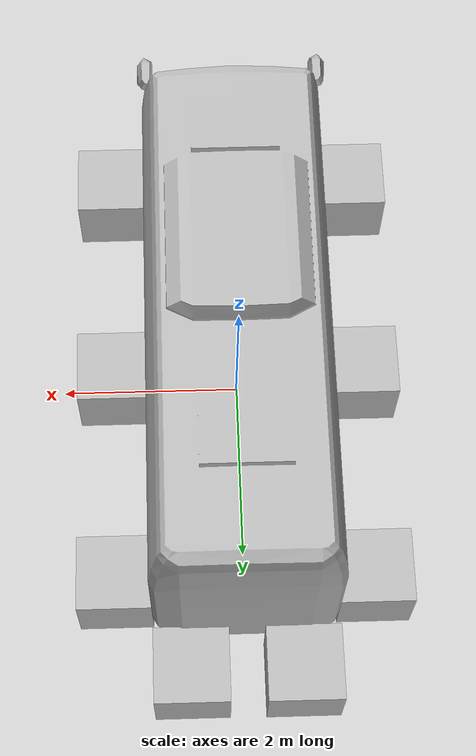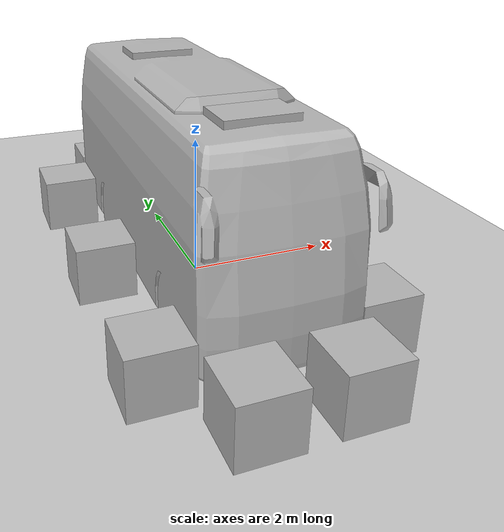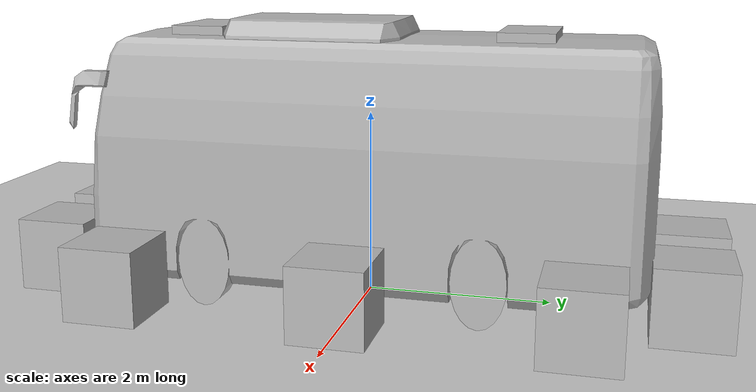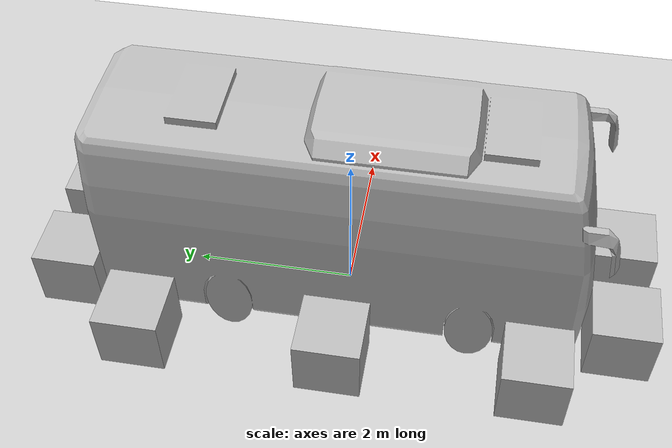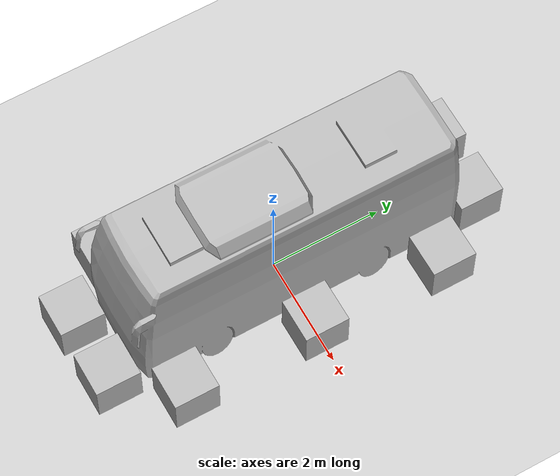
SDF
<sdf version="1.7">
 <world name="default">
  <light name="sun" type="directional">
   <pose>0 0 10 0 -0 0</pose>
   <diffuse>0.8 0.8 0.8 1</diffuse>
   <specular>0.1 0.1 0.1 1</specular>
   <attenuation>
    <range>1000</range>
    <constant>0.9</constant>
    <linear>0.01</linear>
    <quadratic>0.001</quadratic>
   </attenuation>
   <direction>-0.5 0.5 -1</direction>
   <spot><inner_angle>0</inner_angle><outer_angle>0</outer_angle><falloff>0</falloff></spot>
  </light>
  <model name="ground_plane">
   <static>1</static>
   <link name="link">
    <collision name="collision">
     <geometry><plane><normal>0 0 1</normal><size>100 100</size></plane></geometry>
     <surface><friction><ode><mu>100</mu><mu2>50</mu2></ode></friction></surface>
    </collision>
    <visual name="visual">
     <cast_shadows>0</cast_shadows>
     <geometry><plane><normal>0 0 1</normal><size>100 100</size></plane></geometry>
     <material>
      <script><uri>file://media/materials/scripts/gazebo.material</uri><name>Gazebo/Grey</name></script>
     </material>
    </visual>
   </link>
  </model>
  <gravity>0 0 -9.8</gravity>
  <magnetic_field>6e-06 2.3e-05 -4.2e-05</magnetic_field>
  <atmosphere type="adiabatic"/>
  <physics name="default_physics" default="0" type="ode">
   <max_step_size>0.001</max_step_size>
   <real_time_factor>1</real_time_factor>
   <real_time_update_rate>1000</real_time_update_rate>
  </physics>
  <scene><ambient>0.4 0.4 0.4 1</ambient><background>0.7 0.7 0.7 1</background><shadows>1</shadows></scene>
  <spherical_coordinates>
   <surface_model>EARTH_WGS84</surface_model>
   <latitude_deg>0</latitude_deg>
   <longitude_deg>0</longitude_deg>
   <elevation>0</elevation>
   <heading_deg>0</heading_deg>
  </spherical_coordinates>
  <model name="bus_scaled">
   <static>1</static>
   <link name="link">
    <collision name="collision">
     <geometry><mesh><scale>0.00777 0.00489 0.00817</scale><uri>model://bus/meshes/bus.obj</uri></mesh></geometry>
    </collision>
    <visual name="visual">
     <geometry><mesh><scale>0.00777 0.00489 0.00817</scale><uri>model://bus/meshes/bus.obj</uri></mesh></geometry>
    </visual>
   </link>
  </model>
  <model name="number1">
   <pose>0.584145 -3.38582 0.4 0 -0 0</pose>
   <static>1</static>
   <link name="link">
    <visual name="visual">
     <geometry><mesh><uri>model://number1/meshes/number.dae</uri></mesh></geometry>
     <material>
      <script>
       <uri>model://number1/materials/scripts</uri>
       <uri>model://number1/materials/textures</uri>
       <name>Number/One</name>
      </script>
     </material>
    </visual>
    <collision name="collision">
     <geometry><mesh><uri>model://number1/meshes/number.dae</uri></mesh></geometry>
    </collision>
   </link>
  </model>
  <model name="number1_clone">
   <pose>-0.61978 -3.40228 0.4 0 -0 0</pose>
   <static>1</static>
   <link name="link">
    <visual name="visual">
     <geometry><mesh><uri>model://number1/meshes/number.dae</uri></mesh></geometry>
     <material>
      <script>
       <uri>model://number1/materials/scripts</uri>
       <uri>model://number1/materials/textures</uri>
       <name>Number/One</name>
      </script>
     </material>
    </visual>
    <collision name="collision">
     <geometry><mesh><uri>model://number1/meshes/number.dae</uri></mesh></geometry>
    </collision>
   </link>
  </model>
  <model name="number2">
   <pose>-1.4 -2.4 0.4 0 -0 0</pose>
   <static>1</static>
   <link name="link">
    <visual name="visual">
     <geometry><mesh><uri>model://number1/meshes/number.dae</uri></mesh></geometry>
     <material>
      <script>
       <uri>model://number2/materials/scripts</uri>
       <uri>model://number2/materials/textures</uri>
       <name>Number/Two</name>
      </script>
     </material>
    </visual>
    <collision name="collision">
     <geometry><mesh><uri>model://number1/meshes/number.dae</uri></mesh></geometry>
    </collision>
   </link>
  </model>
  <model name="number2_clone">
   <pose>-1.4 2.4 0.4 0 -0 0</pose>
   <static>1</static>
   <link name="link">
    <visual name="visual">
     <geometry><mesh><uri>model://number1/meshes/number.dae</uri></mesh></geometry>
     <material>
      <script>
       <uri>model://number2/materials/scripts</uri>
       <uri>model://number2/materials/textures</uri>
       <name>Number/Two</name>
      </script>
     </material>
    </visual>
    <collision name="collision">
     <geometry><mesh><uri>model://number1/meshes/number.dae</uri></mesh></geometry>
    </collision>
   </link>
  </model>
  <model name="number2_clone_0">
   <pose>-1.4 0 0.4 0 -0 0</pose>
   <static>1</static>
   <link name="link">
    <visual name="visual">
     <geometry><mesh><uri>model://number1/meshes/number.dae</uri></mesh></geometry>
     <material>
      <script>
       <uri>model://number2/materials/scripts</uri>
       <uri>model://number2/materials/textures</uri>
       <name>Number/Two</name>
      </script>
     </material>
    </visual>
    <collision name="collision">
     <geometry><mesh><uri>model://number1/meshes/number.dae</uri></mesh></geometry>
    </collision>
   </link>
  </model>
  <model name="number3">
   <pose>1.4 -2.4 0.4 0 -0 0</pose>
   <static>1</static>
   <link name="link">
    <visual name="visual">
     <geometry><mesh><uri>model://number1/meshes/number.dae</uri></mesh></geometry>
     <material>
      <script>
       <uri>model://number3/materials/scripts</uri>
       <uri>model://number3/materials/textures</uri>
       <name>Number/Three</name>
      </script>
     </material>
    </visual>
    <collision name="collision">
     <geometry><mesh><uri>model://number1/meshes/number.dae</uri></mesh></geometry>
    </collision>
   </link>
  </model>
  <model name="number3_clone">
   <pose>1.4 2.4 0.4 0 -0 0</pose>
   <static>1</static>
   <link name="link">
    <visual name="visual">
     <geometry><mesh><uri>model://number1/meshes/number.dae</uri></mesh></geometry>
     <material>
      <script>
       <uri>model://number3/materials/scripts</uri>
       <uri>model://number3/materials/textures</uri>
       <name>Number/Three</name>
      </script>
     </material>
    </visual>
    <collision name="collision">
     <geometry><mesh><uri>model://number1/meshes/number.dae</uri></mesh></geometry>
    </collision>
   </link>
  </model>
  <model name="number3_clone_0">
   <pose>1.4 0 0.4 0 -0 0</pose>
   <static>1</static>
   <link name="link">
    <visual name="visual">
     <geometry><mesh><uri>model://number1/meshes/number.dae</uri></mesh></geometry>
     <material>
      <script>
       <uri>model://number3/materials/scripts</uri>
       <uri>model://number3/materials/textures</uri>
       <name>Number/Three</name>
      </script>
     </material>
    </visual>
    <collision name="collision">
     <geometry><mesh><uri>model://number1/meshes/number.dae</uri></mesh></geometry>
    </collision>
   </link>
  </model>
  <model name="number4">
   <pose>-0.595171 3.42105 0.4 0 -0 0</pose>
   <static>1</static>
   <link name="link">
    <visual name="visual">
     <geometry><mesh><uri>model://number1/meshes/number.dae</uri></mesh></geometry>
     <material>
      <script>
       <uri>model://number4/materials/scripts</uri>
       <uri>model://number4/materials/textures</uri>
       <name>Number/Four</name>
      </script>
     </material>
    </visual>
    <collision name="collision">
     <geometry><mesh><uri>model://number1/meshes/number.dae</uri></mesh></geometry>
    </collision>
   </link>
  </model>
  <model name="number4_clone">
   <pose>0.592843 3.41387 0.4 0 -0 0</pose>
   <static>1</static>
   <link name="link">
    <visual name="visual">
     <geometry><mesh><uri>model://number1/meshes/number.dae</uri></mesh></geometry>
     <material>
      <script>
       <uri>model://number4/materials/scripts</uri>
       <uri>model://number4/materials/textures</uri>
       <name>Number/Four</name>
      </script>
     </material>
    </visual>
    <collision name="collision">
     <geometry><mesh><uri>model://number1/meshes/number.dae</uri></mesh></geometry>
    </collision>
   </link>
  </model>
 </world>
</sdf>
